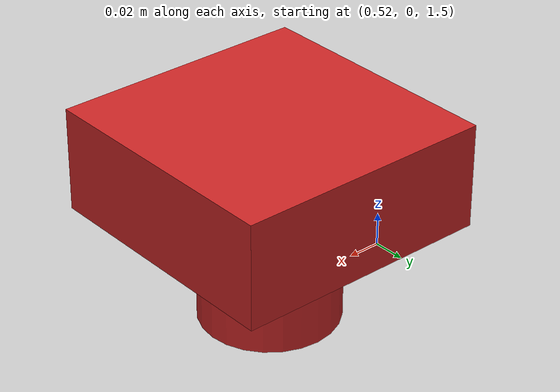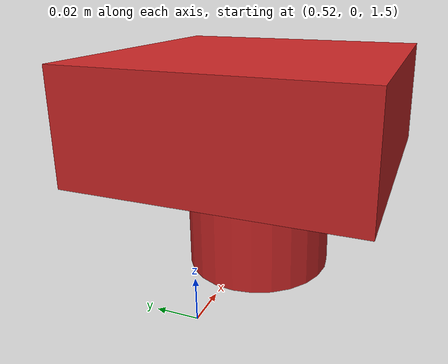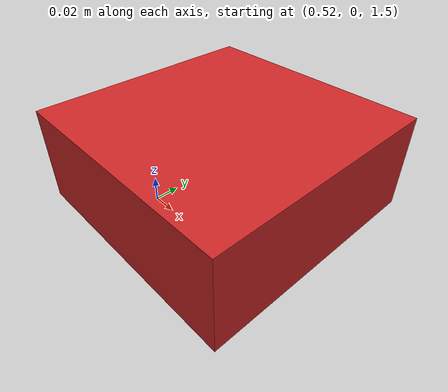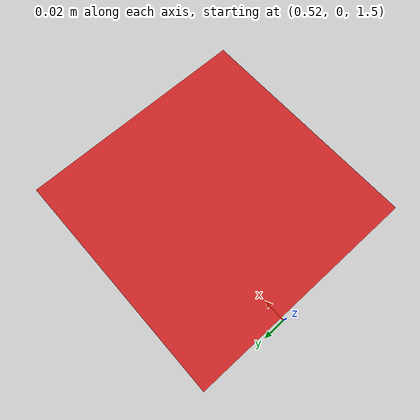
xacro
<?xml version="1.0"?>
<robot name="camera" xmlns:xacro="http://ros.org/wiki/xacro">

    <!-- camera_xyz represents the position of the camera along x, y and z axis -->
    <xacro:property name="camera_xyz" value="0.6 0 1.55"/>
    <!-- camera_rpy represents the orientation of the camera -->
    <xacro:property name="camera_rpy" value="0 ${pi/2} 0" />

    <xacro:macro name="default_inertial" params="mass">
    <inertial>
      <mass value="${mass}" />
      <inertia ixx="1.0" ixy="0.0" ixz="0.0" iyy="1.0" iyz="0.0" izz="1.0" />
    </inertial>
  </xacro:macro>

  <link name="world" />
  <link name="camera_link">
      <visual>
          <origin xyz="-0.03 0 0" rpy="0 0 0"/>
          <geometry>
              <box size="0.06 0.15 0.15" />
          </geometry>
      </visual>
      <visual>
          <origin xyz="0.03 0 0" rpy="0 ${pi/2} 0"/>
          <geometry>
              <cylinder length="0.06" radius="0.04" />
          </geometry>
      </visual>
      <collision>
          <origin xyz="0.0 0 0" rpy="0 0 0"/>
          <geometry>
              <box size="0.12 0.15 0.15" />
          </geometry>
      </collision>
      <xacro:default_inertial mass="1" />
  </link>

<joint name="world_to_camera" type="fixed">
    <origin xyz="${camera_xyz}" rpy="${camera_rpy}"/>
    <parent link="world"/>
    <child link="camera_link"/>
  </joint>

  <!-- First, create the link and joint for the optical frame -->
  <joint name="camera_optical_joint" type="fixed">
    <origin xyz="0 0 0" rpy="-1.571 0 -1.571" />
    <parent link="camera_link" />
    <child link="camera_link_optical" />
</joint>

<link name="camera_link_optical"></link>

<!-- Add a gazebo tag for the ORIGINAL camera_link (but in the plugin we reference the optical frame so that ROS can orient things correctly) -->
<!-- Note that although visualise is set to true, it won't actually visualise the depth camera in gazebo. To see the preview,
        try swapping "depth" to "camera"-->
        <gazebo reference="camera_link">
            <material>Gazebo/Red</material>
            <sensor type="camera" name="my_camera">
                <update_rate>20</update_rate>
                <visualize>true</visualize>
                <camera name="cam">
                    <horizontal_fov>1.3962634</horizontal_fov>
                    <image>
                        <width>640</width>
                        <height>360</height>
                        <format>R8B8G8</format>
                    </image>
                    <clip>
                        <near>0.02</near>
                        <far>300</far>
                    </clip>
                    <noise>
                        <type>gaussian</type>
                        <mean>0.0</mean>
                        <stddev>0.007</stddev>
                    </noise>
                </camera>
                <plugin name="camera_controller" filename="libgazebo_ros_camera.so">
                    <frame_name>camera_link_optical</frame_name>
                    <min_depth>0.1</min_depth>
                    <max_depth>500</max_depth>
                </plugin>
            </sensor>
        </gazebo>

</robot>
